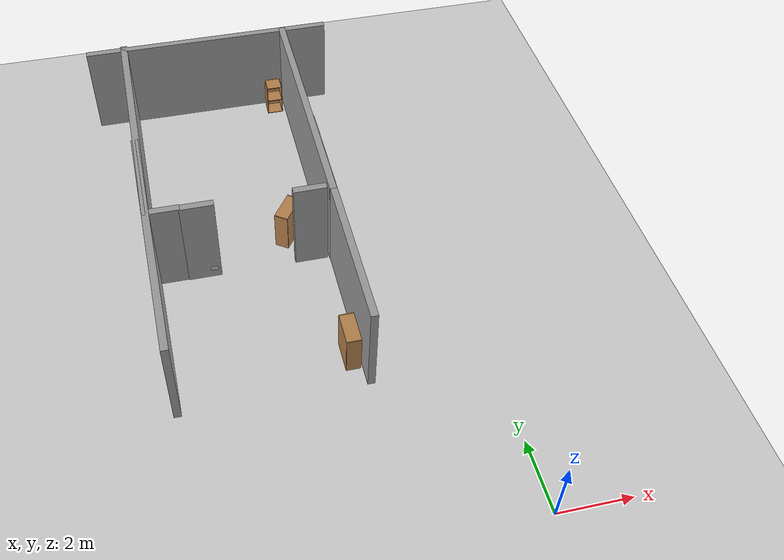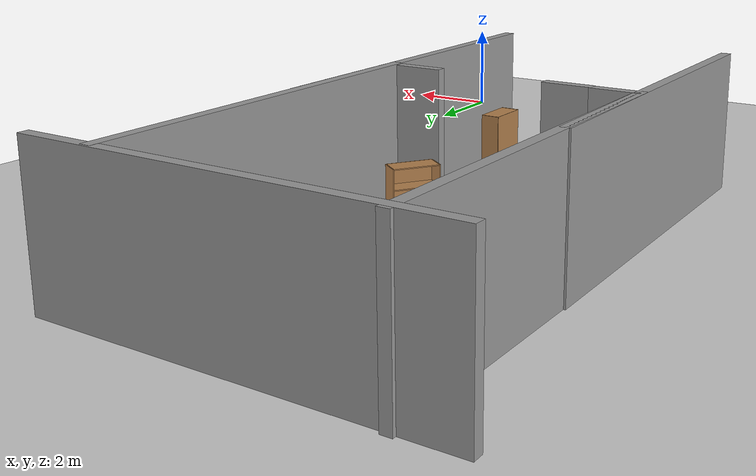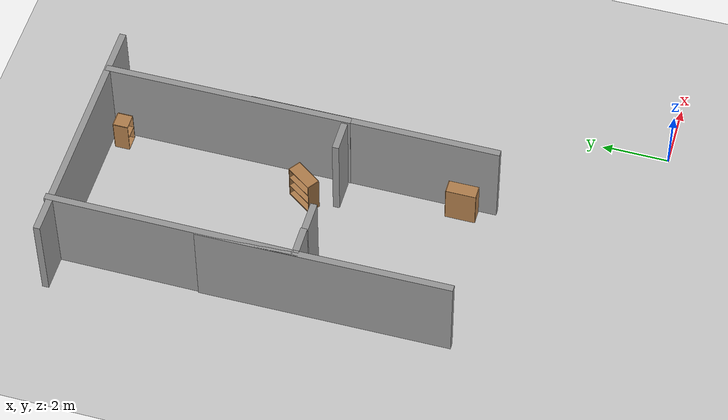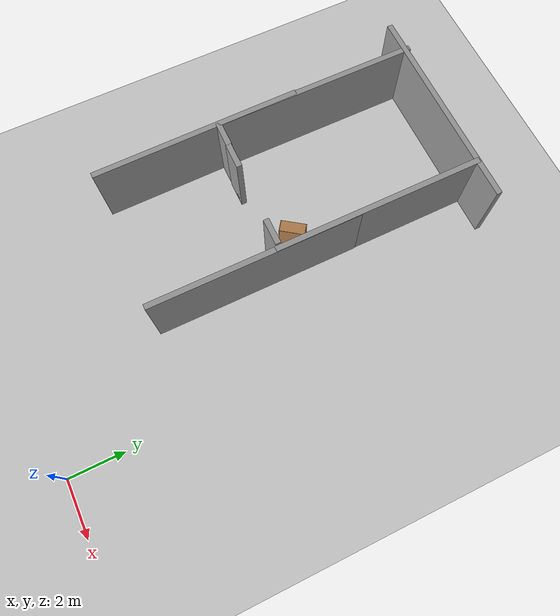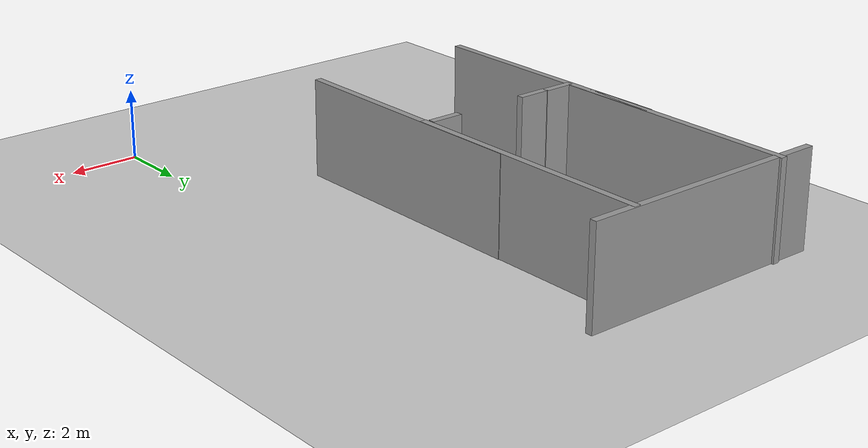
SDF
<sdf version="1.4">
 <world name="default">
  <model name="ground_plane">
   <static>1</static>
   <link name="link">
    <collision name="collision">
     <geometry><plane><normal>0 0 1</normal><size>100 100</size></plane></geometry>
     <surface><friction><ode><mu>100</mu><mu2>50</mu2></ode></friction></surface>
    </collision>
    <visual name="visual">
     <cast_shadows>0</cast_shadows>
     <geometry><plane><normal>0 0 1</normal><size>100 100</size></plane></geometry>
     <material>
      <script><uri>file://media/materials/scripts/gazebo.material</uri><name>Gazebo/Grey</name></script>
     </material>
    </visual>
    <velocity_decay><linear>0</linear><angular>0</angular></velocity_decay>
   </link>
  </model>
  <model name="grey_wall_3">
   <static>1</static>
   <link name="link">
    <pose>0 0 1.4 0 -0 0</pose>
    <collision name="collision"><geometry><box><size>7.5 0.2 2.8</size></box></geometry></collision>
    <visual name="visual">
     <cast_shadows>0</cast_shadows>
     <geometry><box><size>7.5 0.2 2.8</size></box></geometry>
     <material>
      <script>
       <uri>model://grey_wall/materials/scripts</uri>
       <uri>model://grey_wall/materials/textures</uri>
       <name>vrc/grey_wall</name>
      </script>
     </material>
    </visual>
    <velocity_decay><linear>0</linear><angular>0</angular></velocity_decay>
   </link>
   <pose>-3.27062 12.6725 0.00212 0 0 -1.57102</pose>
  </model>
  <model name="grey_wall_4">
   <static>1</static>
   <link name="link">
    <pose>0 0 1.4 0 -0 0</pose>
    <collision name="collision"><geometry><box><size>7.5 0.2 2.8</size></box></geometry></collision>
    <visual name="visual">
     <cast_shadows>0</cast_shadows>
     <geometry><box><size>7.5 0.2 2.8</size></box></geometry>
     <material>
      <script>
       <uri>model://grey_wall/materials/scripts</uri>
       <uri>model://grey_wall/materials/textures</uri>
       <name>vrc/grey_wall</name>
      </script>
     </material>
    </visual>
    <velocity_decay><linear>0</linear><angular>0</angular></velocity_decay>
   </link>
   <pose>-5.65943 16.3616 0 0 -0 0</pose>
  </model>
  <model name="grey_wall_5">
   <static>1</static>
   <link name="link">
    <pose>0 0 1.4 0 -0 0</pose>
    <collision name="collision"><geometry><box><size>7.5 0.2 2.8</size></box></geometry></collision>
    <visual name="visual">
     <cast_shadows>0</cast_shadows>
     <geometry><box><size>7.5 0.2 2.8</size></box></geometry>
     <material>
      <script>
       <uri>model://grey_wall/materials/scripts</uri>
       <uri>model://grey_wall/materials/textures</uri>
       <name>vrc/grey_wall</name>
      </script>
     </material>
    </visual>
    <velocity_decay><linear>0</linear><angular>0</angular></velocity_decay>
   </link>
   <pose>-3.26108 8.21829 0 0 0 -1.57258</pose>
  </model>
  <model name="cabinet">
   <static>1</static>
   <link name="cabinet_bottom_plate">
    <inertial>
     <pose>0 0 -1 0 -0 0</pose>
     <inertia><ixx>2.05</ixx><ixy>0</ixy><ixz>0</ixz><iyy>2.05</iyy><iyz>0</iyz><izz>2.05</izz></inertia>
     <mass>25</mass>
    </inertial>
    <collision name="cabinet_bottom_plate_geom">
     <pose>0 0 0.01 0 -0 0</pose>
     <geometry><box><size>0.45 0.45 0.02</size></box></geometry>
    </collision>
    <visual name="cabinet_bottom_plate_geom_visual">
     <pose>0 0 0.01 0 -0 0</pose>
     <geometry><box><size>0.45 0.45 0.02</size></box></geometry>
     <material>
      <script><uri>file://media/materials/scripts/gazebo.material</uri><name>Gazebo/Wood</name></script>
     </material>
    </visual>
    <collision name="cabinet_bottom_plate_geom_cabinet_back_plate">
     <pose>0.235 0 0.51 0 -0 0</pose>
     <geometry><box><size>0.02 0.45 1.02</size></box></geometry>
    </collision>
    <visual name="cabinet_bottom_plate_geom_cabinet_back_plate_visual">
     <pose>0.235 0 0.51 0 -0 0</pose>
     <geometry><box><size>0.02 0.45 1.02</size></box></geometry>
     <material>
      <script><uri>file://media/materials/scripts/gazebo.material</uri><name>Gazebo/Wood</name></script>
     </material>
    </visual>
    <collision name="cabinet_bottom_plate_geom_cabinet_left_plate">
     <pose>0 0.235 0.51 0 -0 0</pose>
     <geometry><box><size>0.45 0.02 1.02</size></box></geometry>
    </collision>
    <visual name="cabinet_bottom_plate_geom_cabinet_left_plate_visual">
     <pose>0 0.235 0.51 0 -0 0</pose>
     <geometry><box><size>0.45 0.02 1.02</size></box></geometry>
     <material>
      <script><uri>file://media/materials/scripts/gazebo.material</uri><name>Gazebo/Wood</name></script>
     </material>
    </visual>
    <collision name="cabinet_bottom_plate_geom_cabinet_middle_plate">
     <pose>0 0 0.51 0 -0 0</pose>
     <geometry><box><size>0.45 0.45 0.02</size></box></geometry>
    </collision>
    <visual name="cabinet_bottom_plate_geom_cabinet_middle_plate_visual">
     <pose>0 0 0.51 0 -0 0</pose>
     <geometry><box><size>0.45 0.45 0.02</size></box></geometry>
     <material>
      <script><uri>file://media/materials/scripts/gazebo.material</uri><name>Gazebo/Wood</name></script>
     </material>
    </visual>
    <collision name="cabinet_bottom_plate_geom_cabinet_right_plate">
     <pose>0 -0.235 0.51 0 -0 0</pose>
     <geometry><box><size>0.45 0.02 1.02</size></box></geometry>
    </collision>
    <visual name="cabinet_bottom_plate_geom_cabinet_right_plate_visual">
     <pose>0 -0.235 0.51 0 -0 0</pose>
     <geometry><box><size>0.45 0.02 1.02</size></box></geometry>
     <material>
      <script><uri>file://media/materials/scripts/gazebo.material</uri><name>Gazebo/Wood</name></script>
     </material>
    </visual>
    <collision name="cabinet_bottom_plate_geom_cabinet_top_plate">
     <pose>0 0 1.01 0 -0 0</pose>
     <geometry><box><size>0.45 0.45 0.02</size></box></geometry>
    </collision>
    <visual name="cabinet_bottom_plate_geom_cabinet_top_plate_visual">
     <pose>0 0 1.01 0 -0 0</pose>
     <geometry><box><size>0.45 0.45 0.02</size></box></geometry>
     <material>
      <script><uri>file://media/materials/scripts/gazebo.material</uri><name>Gazebo/Wood</name></script>
     </material>
    </visual>
    <velocity_decay><linear>0</linear><angular>0</angular></velocity_decay>
   </link>
   <pose>-3.71069 15.8788 0.028898 0 -0 1.56926</pose>
  </model>
  <model name="bookshelf">
   <static>1</static>
   <link name="link">
    <inertial><mass>1</mass></inertial>
    <collision name="back">
     <pose>0 0.005 0.6 0 -0 0</pose>
     <geometry><box><size>0.9 0.01 1.2</size></box></geometry>
    </collision>
    <visual name="visual1">
     <pose>0 0.005 0.6 0 -0 0</pose>
     <geometry><box><size>0.9 0.01 1.2</size></box></geometry>
     <material>
      <script><uri>file://media/materials/scripts/gazebo.material</uri><name>Gazebo/Wood</name></script>
     </material>
    </visual>
    <collision name="left_side">
     <pose>0.45 -0.195 0.6 0 -0 0</pose>
     <geometry><box><size>0.02 0.4 1.2</size></box></geometry>
    </collision>
    <visual name="visual2">
     <pose>0.45 -0.195 0.6 0 -0 0</pose>
     <geometry><box><size>0.02 0.4 1.2</size></box></geometry>
     <material>
      <script><uri>file://media/materials/scripts/gazebo.material</uri><name>Gazebo/Wood</name></script>
     </material>
    </visual>
    <collision name="right_side">
     <pose>-0.45 -0.195 0.6 0 -0 0</pose>
     <geometry><box><size>0.02 0.4 1.2</size></box></geometry>
    </collision>
    <visual name="visual3">
     <pose>-0.45 -0.195 0.6 0 -0 0</pose>
     <geometry><box><size>0.02 0.4 1.2</size></box></geometry>
     <material>
      <script><uri>file://media/materials/scripts/gazebo.material</uri><name>Gazebo/Wood</name></script>
     </material>
    </visual>
    <collision name="bottom">
     <pose>0 -0.195 0.03 0 -0 0</pose>
     <geometry><box><size>0.88 0.4 0.06</size></box></geometry>
    </collision>
    <visual name="visual4">
     <pose>0 -0.195 0.03 0 -0 0</pose>
     <geometry><box><size>0.88 0.4 0.06</size></box></geometry>
     <material>
      <script><uri>file://media/materials/scripts/gazebo.material</uri><name>Gazebo/Wood</name></script>
     </material>
    </visual>
    <collision name="top">
     <pose>0 -0.195 1.19 0 -0 0</pose>
     <geometry><box><size>0.88 0.4 0.02</size></box></geometry>
    </collision>
    <visual name="visual5">
     <pose>0 -0.195 1.19 0 -0 0</pose>
     <geometry><box><size>0.88 0.4 0.02</size></box></geometry>
     <material>
      <script><uri>file://media/materials/scripts/gazebo.material</uri><name>Gazebo/Wood</name></script>
     </material>
    </visual>
    <collision name="low_shelf">
     <pose>0 -0.195 0.43 0 -0 0</pose>
     <geometry><box><size>0.88 0.4 0.02</size></box></geometry>
    </collision>
    <visual name="visual6">
     <pose>0 -0.195 0.43 0 -0 0</pose>
     <geometry><box><size>0.88 0.4 0.02</size></box></geometry>
     <material>
      <script><uri>file://media/materials/scripts/gazebo.material</uri><name>Gazebo/Wood</name></script>
     </material>
    </visual>
    <collision name="high_shelf">
     <pose>0 -0.195 0.8 0 -0 0</pose>
     <geometry><box><size>0.88 0.4 0.02</size></box></geometry>
    </collision>
    <visual name="visual7">
     <pose>0 -0.195 0.8 0 -0 0</pose>
     <geometry><box><size>0.88 0.4 0.02</size></box></geometry>
     <material>
      <script><uri>file://media/materials/scripts/gazebo.material</uri><name>Gazebo/Wood</name></script>
     </material>
    </visual>
    <velocity_decay><linear>0</linear><angular>0</angular></velocity_decay>
   </link>
   <pose>-4.19722 9.94974 0 0 0 -2.18701</pose>
  </model>
  <model name="grey_wall">
   <static>1</static>
   <link name="link">
    <pose>0 0 1.4 0 -0 0</pose>
    <collision name="collision"><geometry><box><size>7.5 0.2 2.8</size></box></geometry></collision>
    <visual name="visual">
     <cast_shadows>0</cast_shadows>
     <geometry><box><size>7.5 0.2 2.8</size></box></geometry>
     <material>
      <script>
       <uri>model://grey_wall/materials/scripts</uri>
       <uri>model://grey_wall/materials/textures</uri>
       <name>vrc/grey_wall</name>
      </script>
     </material>
    </visual>
    <velocity_decay><linear>0</linear><angular>0</angular></velocity_decay>
   </link>
   <pose>-8.28317 8.30163 0 0 0 -1.56399</pose>
  </model>
  <model name="grey_wall_9">
   <static>1</static>
   <link name="link">
    <pose>0 0 1.4 0 -0 0</pose>
    <collision name="collision"><geometry><box><size>7.5 0.2 2.8</size></box></geometry></collision>
    <visual name="visual">
     <cast_shadows>0</cast_shadows>
     <geometry><box><size>7.5 0.2 2.8</size></box></geometry>
     <material>
      <script>
       <uri>model://grey_wall/materials/scripts</uri>
       <uri>model://grey_wall/materials/textures</uri>
       <name>vrc/grey_wall</name>
      </script>
     </material>
    </visual>
    <velocity_decay><linear>0</linear><angular>0</angular></velocity_decay>
   </link>
   <pose>-8.26957 12.7762 0 0 0 -1.57405</pose>
  </model>
  <model name="grey_wall_small">
   <static>1</static>
   <link name="link">
    <pose>0 0 1.4 0 -0 0</pose>
    <collision name="collision"><geometry><box><size>0.9375 0.2 2.8</size></box></geometry></collision>
    <visual name="visual">
     <cast_shadows>0</cast_shadows>
     <geometry><box><size>0.9375 0.2 2.8</size></box></geometry>
     <material>
      <script>
       <uri>model://grey_wall_small/materials/scripts</uri>
       <uri>model://grey_wall_small/materials/textures</uri>
       <name>vrc/grey_wall_small</name>
      </script>
     </material>
    </visual>
    <velocity_decay><linear>0</linear><angular>0</angular></velocity_decay>
   </link>
   <pose>-7.8487 9.12291 0 0 -0 0</pose>
  </model>
  <model name="grey_wall_small_1">
   <static>1</static>
   <link name="link">
    <pose>0 0 1.4 0 -0 0</pose>
    <collision name="collision"><geometry><box><size>0.9375 0.2 2.8</size></box></geometry></collision>
    <visual name="visual">
     <cast_shadows>0</cast_shadows>
     <geometry><box><size>0.9375 0.2 2.8</size></box></geometry>
     <material>
      <script>
       <uri>model://grey_wall_small/materials/scripts</uri>
       <uri>model://grey_wall_small/materials/textures</uri>
       <name>vrc/grey_wall_small</name>
      </script>
     </material>
    </visual>
    <velocity_decay><linear>0</linear><angular>0</angular></velocity_decay>
   </link>
   <pose>-3.88415 9.08426 0 0 -0 0</pose>
  </model>
  <model name="grey_wall_small_2">
   <static>1</static>
   <link name="link">
    <pose>0 0 1.4 0 -0 0</pose>
    <collision name="collision"><geometry><box><size>0.9375 0.2 2.8</size></box></geometry></collision>
    <visual name="visual">
     <cast_shadows>0</cast_shadows>
     <geometry><box><size>0.9375 0.2 2.8</size></box></geometry>
     <material>
      <script>
       <uri>model://grey_wall_small/materials/scripts</uri>
       <uri>model://grey_wall_small/materials/textures</uri>
       <name>vrc/grey_wall_small</name>
      </script>
     </material>
    </visual>
    <velocity_decay><linear>0</linear><angular>0</angular></velocity_decay>
   </link>
   <pose>-6.94611 9.09914 0 0 -0 0</pose>
  </model>
  <model name="red_image">
   <static>1</static>
   <link name="link">
    <collision name="collision"><geometry><box><size>0.21 0.0001 0.16</size></box></geometry></collision>
    <visual name="visual">
     <cast_shadows>0</cast_shadows>
     <geometry><box><size>0.21 0.0001 0.16</size></box></geometry>
     <material>
      <script>
       <uri>model://red_image/materials/scripts</uri>
       <uri>model://red_image/materials/textures</uri>
       <name>red_image/Image</name>
      </script>
     </material>
    </visual>
    <velocity_decay><linear>0</linear><angular>0</angular></velocity_decay>
   </link>
   <pose>-6.66352 8.96889 0.357122 0 -0 0</pose>
  </model>
  <model name="bookshelf_1">
   <static>1</static>
   <link name="link">
    <inertial><mass>1</mass></inertial>
    <collision name="back">
     <pose>0 0.005 0.6 0 -0 0</pose>
     <geometry><box><size>0.9 0.01 1.2</size></box></geometry>
    </collision>
    <visual name="visual1">
     <pose>0 0.005 0.6 0 -0 0</pose>
     <geometry><box><size>0.9 0.01 1.2</size></box></geometry>
     <material>
      <script><uri>file://media/materials/scripts/gazebo.material</uri><name>Gazebo/Wood</name></script>
     </material>
    </visual>
    <collision name="left_side">
     <pose>0.45 -0.195 0.6 0 -0 0</pose>
     <geometry><box><size>0.02 0.4 1.2</size></box></geometry>
    </collision>
    <visual name="visual2">
     <pose>0.45 -0.195 0.6 0 -0 0</pose>
     <geometry><box><size>0.02 0.4 1.2</size></box></geometry>
     <material>
      <script><uri>file://media/materials/scripts/gazebo.material</uri><name>Gazebo/Wood</name></script>
     </material>
    </visual>
    <collision name="right_side">
     <pose>-0.45 -0.195 0.6 0 -0 0</pose>
     <geometry><box><size>0.02 0.4 1.2</size></box></geometry>
    </collision>
    <visual name="visual3">
     <pose>-0.45 -0.195 0.6 0 -0 0</pose>
     <geometry><box><size>0.02 0.4 1.2</size></box></geometry>
     <material>
      <script><uri>file://media/materials/scripts/gazebo.material</uri><name>Gazebo/Wood</name></script>
     </material>
    </visual>
    <collision name="bottom">
     <pose>0 -0.195 0.03 0 -0 0</pose>
     <geometry><box><size>0.88 0.4 0.06</size></box></geometry>
    </collision>
    <visual name="visual4">
     <pose>0 -0.195 0.03 0 -0 0</pose>
     <geometry><box><size>0.88 0.4 0.06</size></box></geometry>
     <material>
      <script><uri>file://media/materials/scripts/gazebo.material</uri><name>Gazebo/Wood</name></script>
     </material>
    </visual>
    <collision name="top">
     <pose>0 -0.195 1.19 0 -0 0</pose>
     <geometry><box><size>0.88 0.4 0.02</size></box></geometry>
    </collision>
    <visual name="visual5">
     <pose>0 -0.195 1.19 0 -0 0</pose>
     <geometry><box><size>0.88 0.4 0.02</size></box></geometry>
     <material>
      <script><uri>file://media/materials/scripts/gazebo.material</uri><name>Gazebo/Wood</name></script>
     </material>
    </visual>
    <collision name="low_shelf">
     <pose>0 -0.195 0.43 0 -0 0</pose>
     <geometry><box><size>0.88 0.4 0.02</size></box></geometry>
    </collision>
    <visual name="visual6">
     <pose>0 -0.195 0.43 0 -0 0</pose>
     <geometry><box><size>0.88 0.4 0.02</size></box></geometry>
     <material>
      <script><uri>file://media/materials/scripts/gazebo.material</uri><name>Gazebo/Wood</name></script>
     </material>
    </visual>
    <collision name="high_shelf">
     <pose>0 -0.195 0.8 0 -0 0</pose>
     <geometry><box><size>0.88 0.4 0.02</size></box></geometry>
    </collision>
    <visual name="visual7">
     <pose>0 -0.195 0.8 0 -0 0</pose>
     <geometry><box><size>0.88 0.4 0.02</size></box></geometry>
     <material>
      <script><uri>file://media/materials/scripts/gazebo.material</uri><name>Gazebo/Wood</name></script>
     </material>
    </visual>
    <velocity_decay><linear>0</linear><angular>0</angular></velocity_decay>
   </link>
   <pose>-3.80492 5.46303 0 0 -0 1.56891</pose>
  </model>
 </world>
</sdf>
